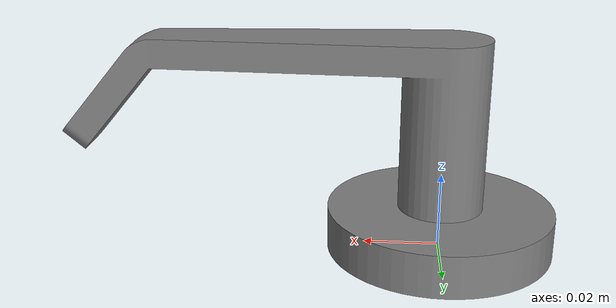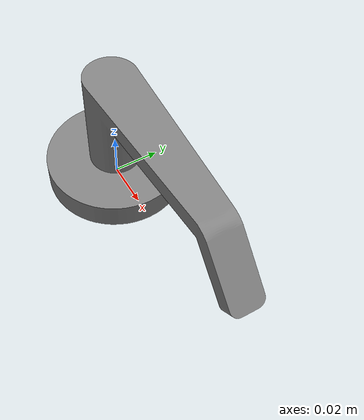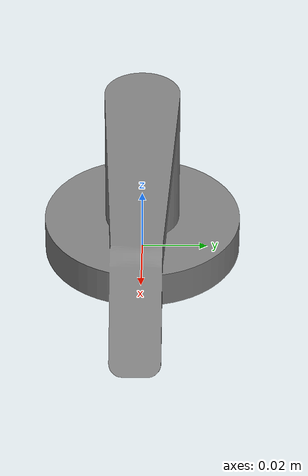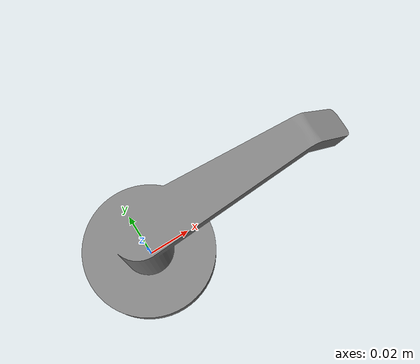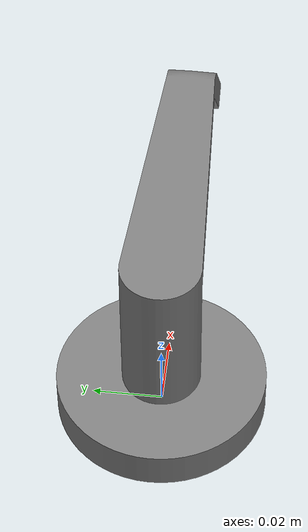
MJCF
<mujoco model="handle">
  <asset>
    <mesh file="meshes/handle.stl" name="handle_mesh" scale="0.015 0.015 0.015"/>
  </asset>
  <worldbody>
    <body>
      <body name="collision">
        <geom pos="0 0 0" mesh="handle_mesh" type="mesh" solimp="0.998 0.998 0.001" solref="0.001 1" density="100" friction="0.95 0.3 0.1"  group="1" condim="4"/>
      </body>
      <body name="visual">
        <geom pos="0 0 0" mesh="handle_mesh" type="mesh" conaffinity="0" contype="0" group="0" mass="0.0001"/>
        <geom pos="0 0 0" mesh="handle_mesh" type="mesh" conaffinity="0" contype="0" group="1" mass="0.0001"/>  <!--why???-->
      </body>
      <site rgba="0 0 0 0" size="0.005" pos="0 0 -0.06" name="bottom_site"/>
      <site rgba="0 0 0 0" size="0.005" pos="0 0 0.04" name="top_site"/>
      <site rgba="0 0 0 0" size="0.005" pos="0.025 0.025 0" name="horizontal_radius_site"/>
    </body>
  </worldbody>
</mujoco>
